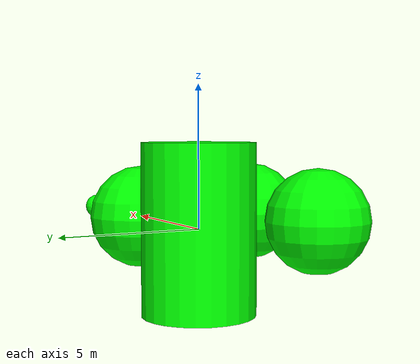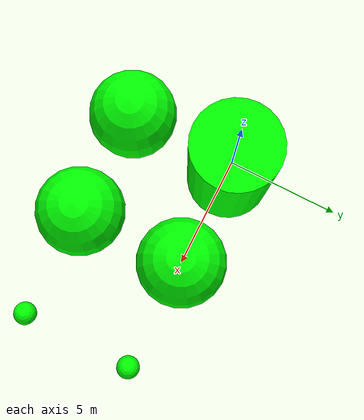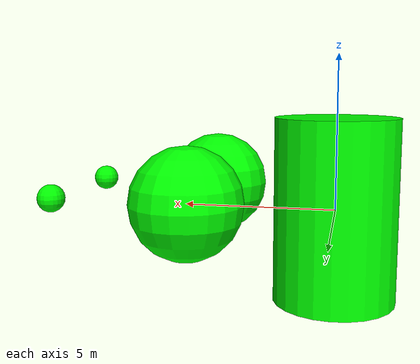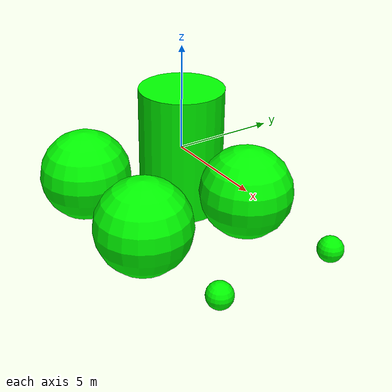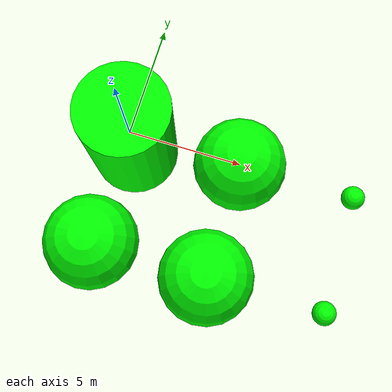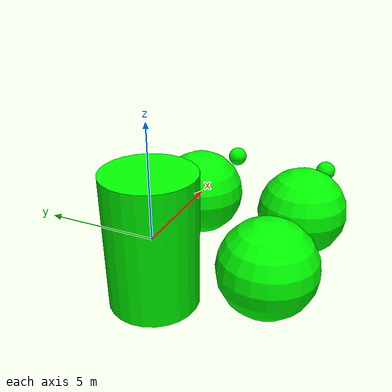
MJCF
<mujoco>
    <default class="main">
        <geom rgba="0 1 0 1" type="sphere" size="2"/>
        <default class="sub">
            <geom type="cylinder" size="2 3"/>
        </default>
        <default class="small_shape">
            <geom size="0.5 0.5 0.5" />
        </default>
    </default>

    <worldbody>
        <body name="body1" childclass="sub">
            <geom name="shape1" />
            <geom name="shape2" pos="5 0 0" class="main"/>
            <geom name="shape3" pos="10 0 0" class="small_shape"/>
        </body>
        <body name="body2" pos="0 -5 0">
            <geom name="shape4" />
            <geom name="shape5" pos="5 0 0" class="main"/>
            <geom name="shape6" pos="10 0 0" class="small_shape"/>
        </body>
    </worldbody>
</mujoco>
